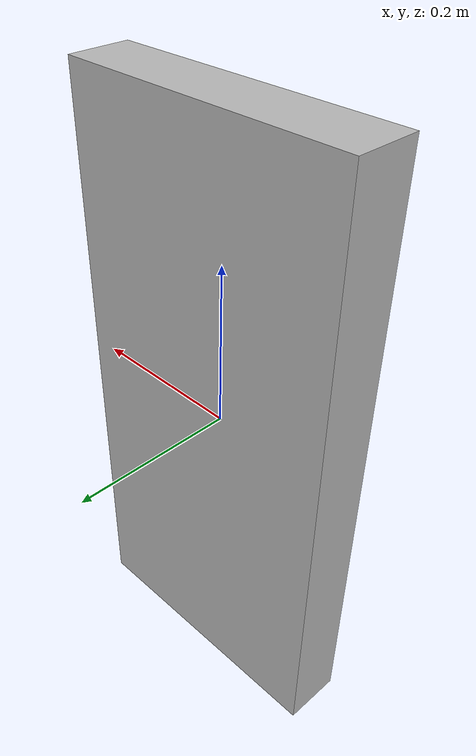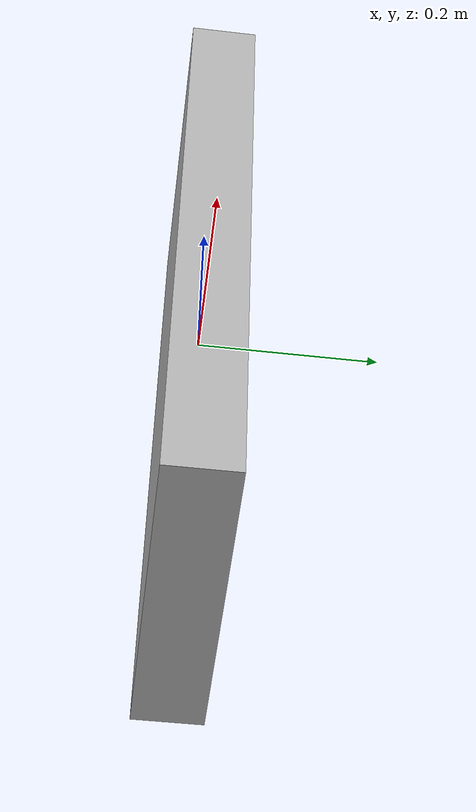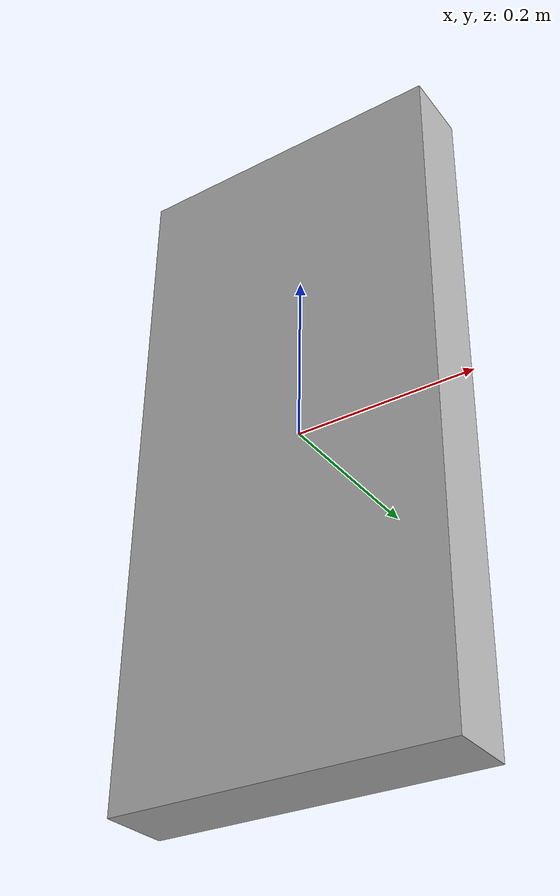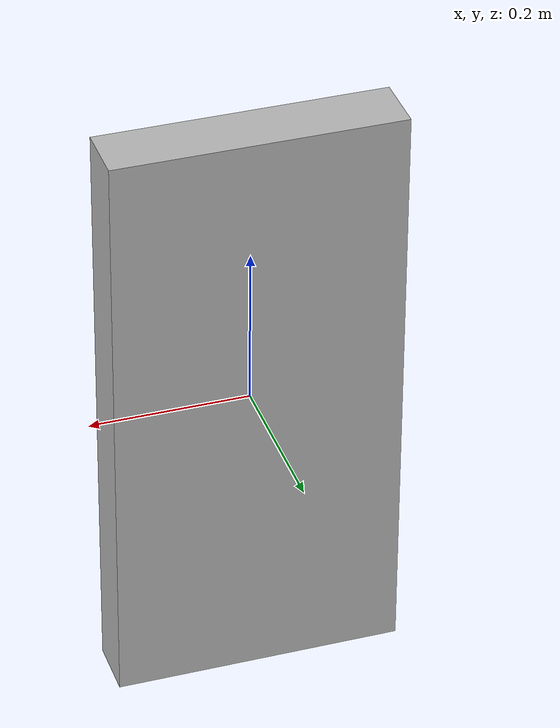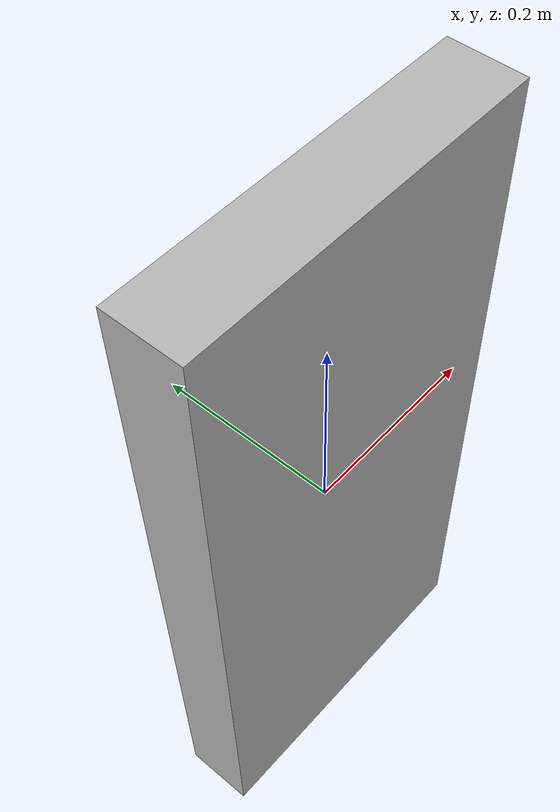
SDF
<?xml version="1.0" ?>
<sdf version="1.6">
  <model name="traffic_stop">
    <static>true</static>
    <link name="box">
      <pose>0 0 0 0 0 0</pose>
      <collision name="collision">
        <geometry>
          <box>
            <size>0.36 0.075 0.75</size>
          </box>
        </geometry>
      </collision>
      <visual name="visual">
        <geometry>
          <box>
            <size>0.36 0.075 0.75</size>
          </box>
        </geometry>
        <material>
          <script>
            <uri>model://turtlebot3_autorace_2020/traffic_stop/materials/scripts</uri>
            <uri>model://turtlebot3_autorace_2020/traffic_stop/materials/textures</uri>
            <name>traffic_stop</name>
          </script>
        </material>
      </visual>
    </link>
  </model>
</sdf>
